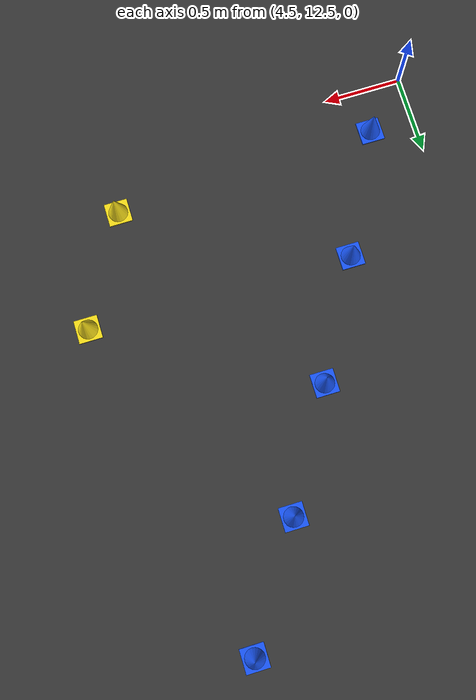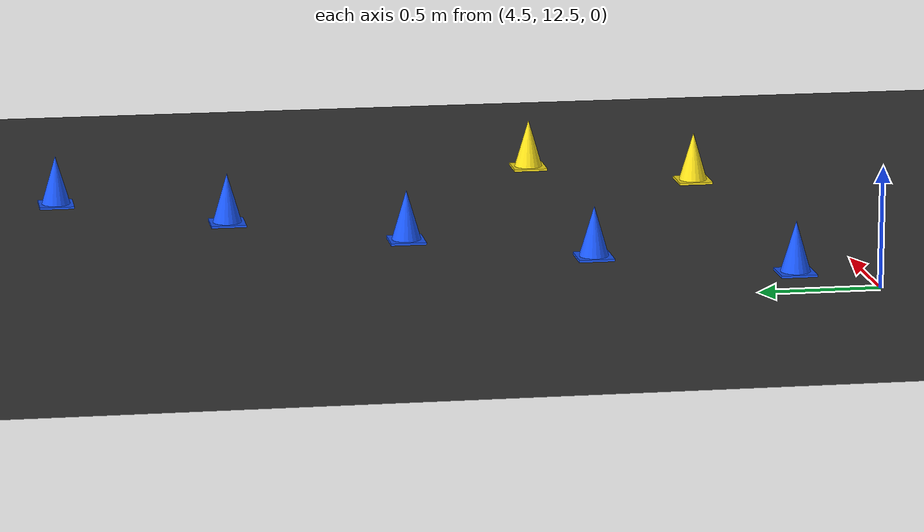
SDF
<sdf version="1.8">
 <world name="track_with_cones">
  <model name="ground_plane">
   <static>true</static>
   <link name="link">
    <collision name="collision">
     <geometry><plane><normal>0 0 1</normal><size>100 100</size></plane></geometry>
     <surface><friction><ode><mu>100</mu><mu2>100</mu2></ode></friction></surface>
    </collision>
    <visual name="visual">
     <geometry><plane><normal>0 0 1</normal><size>100 100</size></plane></geometry>
     <material>
      <ambient>0.22 0.22 0.22 1</ambient>
      <diffuse>0.22 0.22 0.22 1</diffuse>
      <specular>0.05 0.05 0.05 1</specular>
     </material>
    </visual>
   </link>
  </model>
  <model name="cone_blue_37">
   <static>true</static>
   <pose>4.7866 12.7828 0.11 0 0 0</pose>
   <link name="link">
    <visual name="base_visual">
     <pose>0 0 -0.105 0 0 0</pose>
     <geometry><box><size>0.15 0.15 0.01</size></box></geometry>
     <material>
      <ambient>0.05 0.25 0.95 1.0</ambient>
      <diffuse>0.10 0.35 1.00 1.0</diffuse>
      <specular>0.2 0.2 0.2 1.0</specular>
     </material>
    </visual>
    <visual name="cone_visual">
     <geometry><cone><radius>0.065</radius><length>0.22</length></cone></geometry>
     <material>
      <ambient>0.05 0.25 0.95 1.0</ambient>
      <diffuse>0.10 0.35 1.00 1.0</diffuse>
      <specular>0.2 0.2 0.2 1.0</specular>
     </material>
    </visual>
    <collision name="collision">
     <geometry><cylinder><radius>0.065</radius><length>0.22</length></cylinder></geometry>
    </collision>
   </link>
  </model>
  <model name="cone_blue_38">
   <static>true</static>
   <pose>5.1707 13.5472 0.11 0 0 0</pose>
   <link name="link">
    <visual name="base_visual">
     <pose>0 0 -0.105 0 0 0</pose>
     <geometry><box><size>0.15 0.15 0.01</size></box></geometry>
     <material>
      <ambient>0.05 0.25 0.95 1.0</ambient>
      <diffuse>0.10 0.35 1.00 1.0</diffuse>
      <specular>0.2 0.2 0.2 1.0</specular>
     </material>
    </visual>
    <visual name="cone_visual">
     <geometry><cone><radius>0.065</radius><length>0.22</length></cone></geometry>
     <material>
      <ambient>0.05 0.25 0.95 1.0</ambient>
      <diffuse>0.10 0.35 1.00 1.0</diffuse>
      <specular>0.2 0.2 0.2 1.0</specular>
     </material>
    </visual>
    <collision name="collision">
     <geometry><cylinder><radius>0.065</radius><length>0.22</length></cylinder></geometry>
    </collision>
   </link>
  </model>
  <model name="cone_yellow_38">
   <static>true</static>
   <pose>6.4961 12.8447 0.11 0 0 0</pose>
   <link name="link">
    <visual name="base_visual">
     <pose>0 0 -0.105 0 0 0</pose>
     <geometry><box><size>0.15 0.15 0.01</size></box></geometry>
     <material>
      <ambient>0.95 0.85 0.05 1.0</ambient>
      <diffuse>1.00 0.90 0.10 1.0</diffuse>
      <specular>0.2 0.2 0.2 1.0</specular>
     </material>
    </visual>
    <visual name="cone_visual">
     <geometry><cone><radius>0.065</radius><length>0.22</length></cone></geometry>
     <material>
      <ambient>0.95 0.85 0.05 1.0</ambient>
      <diffuse>1.00 0.90 0.10 1.0</diffuse>
      <specular>0.2 0.2 0.2 1.0</specular>
     </material>
    </visual>
    <collision name="collision">
     <geometry><cylinder><radius>0.065</radius><length>0.22</length></cylinder></geometry>
    </collision>
   </link>
  </model>
  <model name="cone_blue_39">
   <static>true</static>
   <pose>5.5754 14.2737 0.11 0 0 0</pose>
   <link name="link">
    <visual name="base_visual">
     <pose>0 0 -0.105 0 0 0</pose>
     <geometry><box><size>0.15 0.15 0.01</size></box></geometry>
     <material>
      <ambient>0.05 0.25 0.95 1.0</ambient>
      <diffuse>0.10 0.35 1.00 1.0</diffuse>
      <specular>0.2 0.2 0.2 1.0</specular>
     </material>
    </visual>
    <visual name="cone_visual">
     <geometry><cone><radius>0.065</radius><length>0.22</length></cone></geometry>
     <material>
      <ambient>0.05 0.25 0.95 1.0</ambient>
      <diffuse>0.10 0.35 1.00 1.0</diffuse>
      <specular>0.2 0.2 0.2 1.0</specular>
     </material>
    </visual>
    <collision name="collision">
     <geometry><cylinder><radius>0.065</radius><length>0.22</length></cylinder></geometry>
    </collision>
   </link>
  </model>
  <model name="cone_yellow_39">
   <static>true</static>
   <pose>6.8753 13.5252 0.11 0 0 0</pose>
   <link name="link">
    <visual name="base_visual">
     <pose>0 0 -0.105 0 0 0</pose>
     <geometry><box><size>0.15 0.15 0.01</size></box></geometry>
     <material>
      <ambient>0.95 0.85 0.05 1.0</ambient>
      <diffuse>1.00 0.90 0.10 1.0</diffuse>
      <specular>0.2 0.2 0.2 1.0</specular>
     </material>
    </visual>
    <visual name="cone_visual">
     <geometry><cone><radius>0.065</radius><length>0.22</length></cone></geometry>
     <material>
      <ambient>0.95 0.85 0.05 1.0</ambient>
      <diffuse>1.00 0.90 0.10 1.0</diffuse>
      <specular>0.2 0.2 0.2 1.0</specular>
     </material>
    </visual>
    <collision name="collision">
     <geometry><cylinder><radius>0.065</radius><length>0.22</length></cylinder></geometry>
    </collision>
   </link>
  </model>
  <model name="cone_blue_40">
   <static>true</static>
   <pose>5.9998 14.9871 0.11 0 0 0</pose>
   <link name="link">
    <visual name="base_visual">
     <pose>0 0 -0.105 0 0 0</pose>
     <geometry><box><size>0.15 0.15 0.01</size></box></geometry>
     <material>
      <ambient>0.05 0.25 0.95 1.0</ambient>
      <diffuse>0.10 0.35 1.00 1.0</diffuse>
      <specular>0.2 0.2 0.2 1.0</specular>
     </material>
    </visual>
    <visual name="cone_visual">
     <geometry><cone><radius>0.065</radius><length>0.22</length></cone></geometry>
     <material>
      <ambient>0.05 0.25 0.95 1.0</ambient>
      <diffuse>0.10 0.35 1.00 1.0</diffuse>
      <specular>0.2 0.2 0.2 1.0</specular>
     </material>
    </visual>
    <collision name="collision">
     <geometry><cylinder><radius>0.065</radius><length>0.22</length></cylinder></geometry>
    </collision>
   </link>
  </model>
  <model name="cone_blue_41">
   <static>true</static>
   <pose>6.4543 15.6895 0.11 0 0 0</pose>
   <link name="link">
    <visual name="base_visual">
     <pose>0 0 -0.105 0 0 0</pose>
     <geometry><box><size>0.15 0.15 0.01</size></box></geometry>
     <material>
      <ambient>0.05 0.25 0.95 1.0</ambient>
      <diffuse>0.10 0.35 1.00 1.0</diffuse>
      <specular>0.2 0.2 0.2 1.0</specular>
     </material>
    </visual>
    <visual name="cone_visual">
     <geometry><cone><radius>0.065</radius><length>0.22</length></cone></geometry>
     <material>
      <ambient>0.05 0.25 0.95 1.0</ambient>
      <diffuse>0.10 0.35 1.00 1.0</diffuse>
      <specular>0.2 0.2 0.2 1.0</specular>
     </material>
    </visual>
    <collision name="collision">
     <geometry><cylinder><radius>0.065</radius><length>0.22</length></cylinder></geometry>
    </collision>
   </link>
  </model>
 </world>
</sdf>
